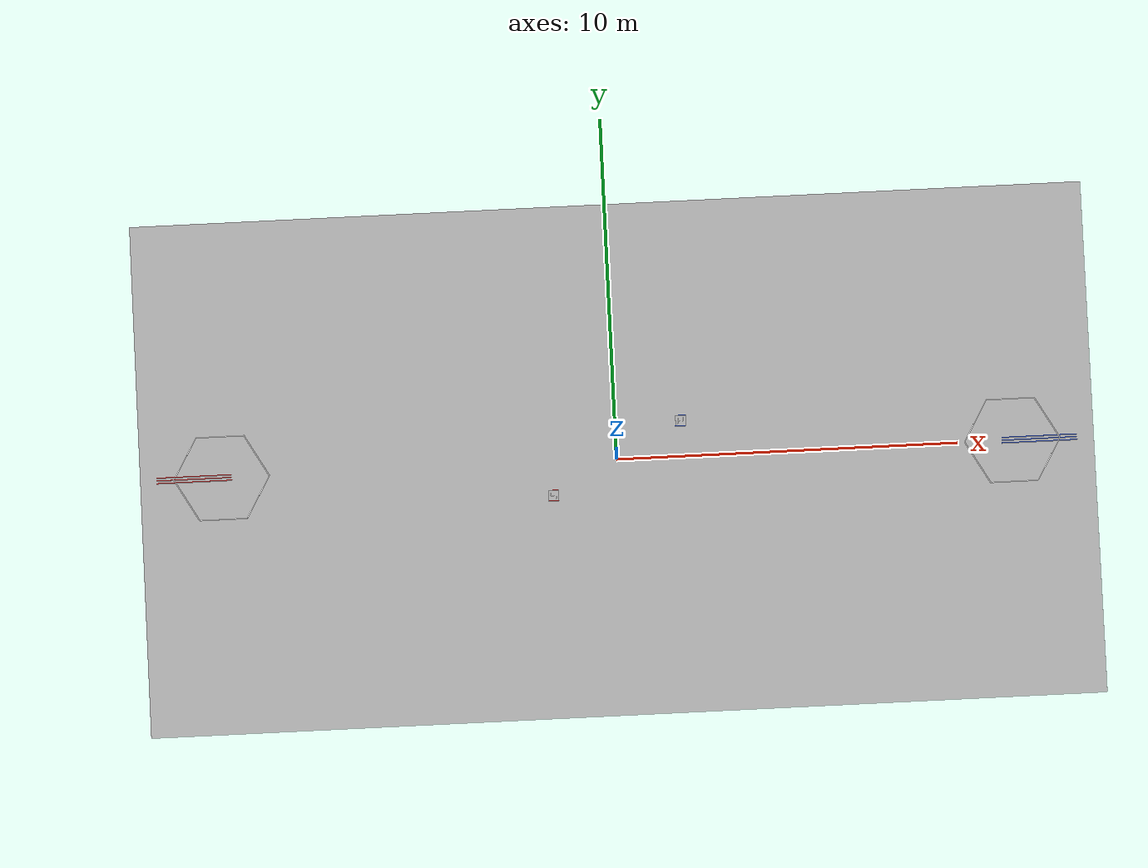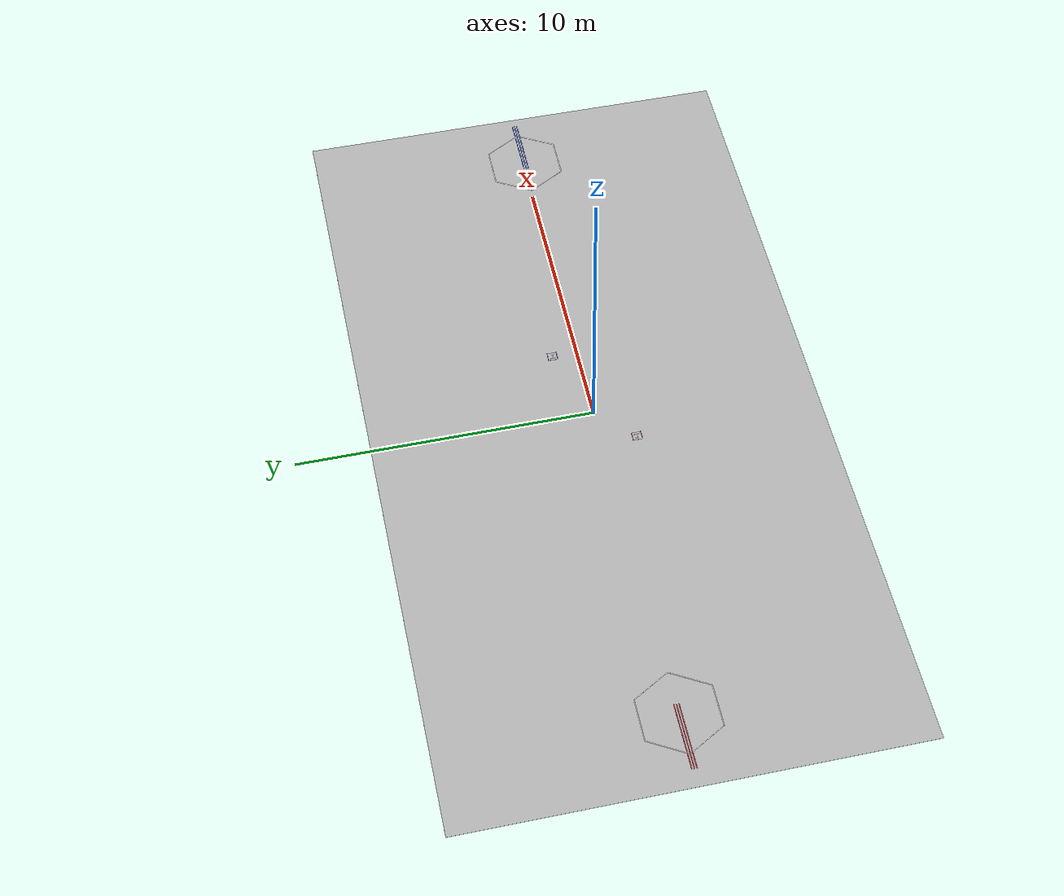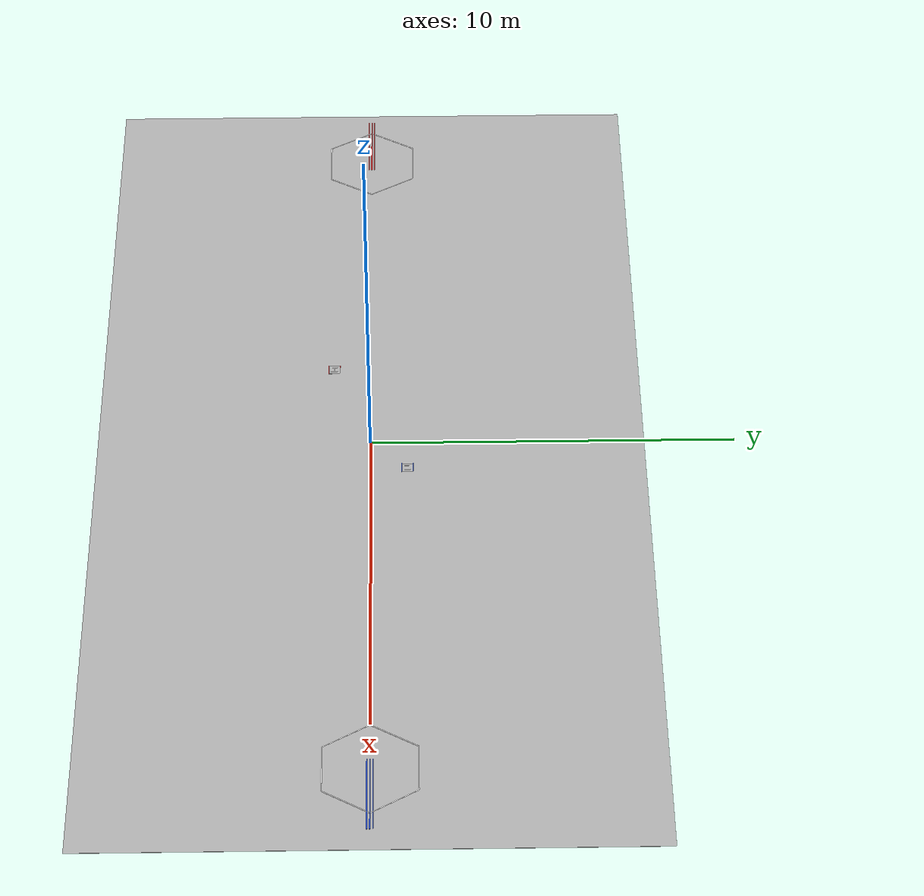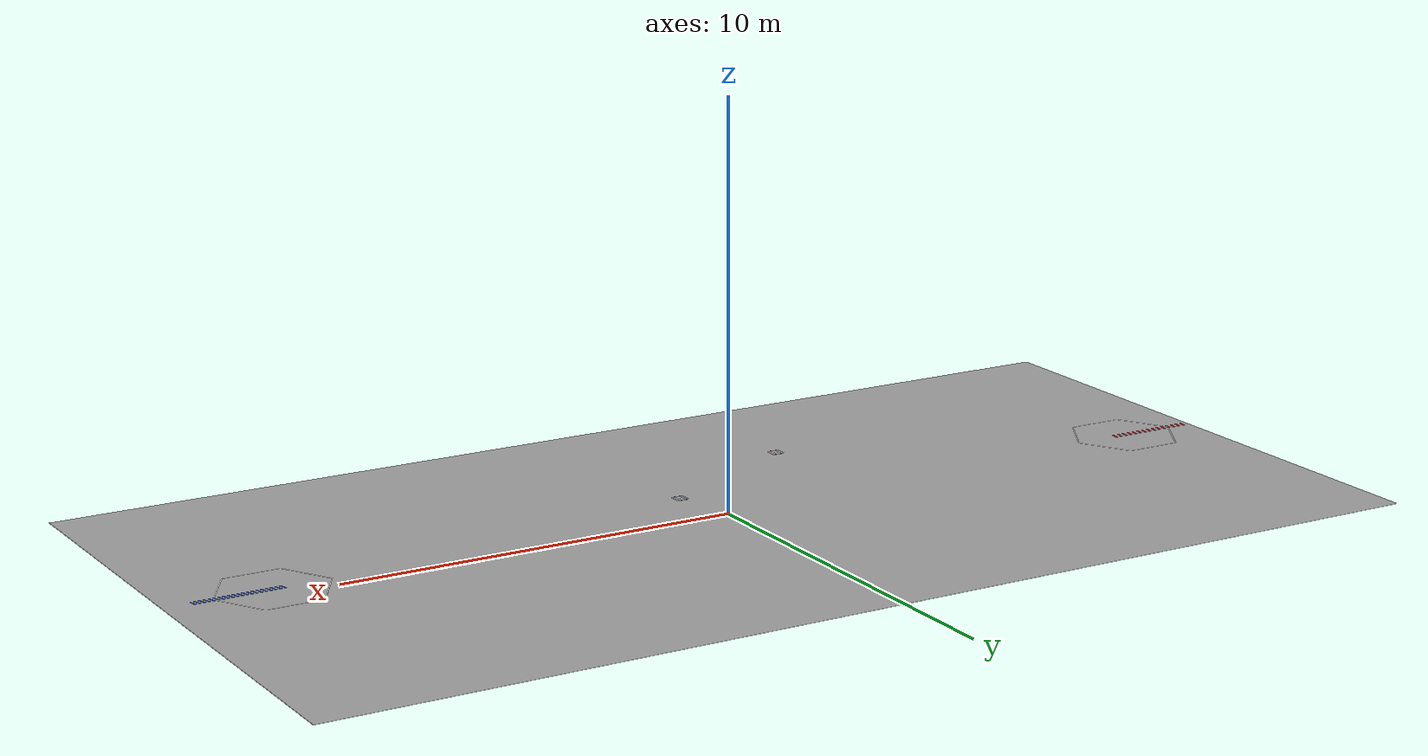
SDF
<sdf version="1.6">
 <world name="rmuc2027">
  <physics name="default" type="ode">
   <max_step_size>0.002</max_step_size>
   <real_time_factor>1.0</real_time_factor>
   <real_time_update_rate>500</real_time_update_rate>
   <ode><solver><type>quick</type><iters>50</iters></solver></ode>
  </physics>
  <gravity>0 0 -9.81</gravity>
  <scene>
   <ambient>0.35 0.35 0.35 1</ambient>
   <background>0.15 0.15 0.18 1</background>
   <shadows>false</shadows>
   <grid>false</grid>
  </scene>
  <light name="sun" type="directional">
   <pose>0 0 20 0 0 0</pose>
   <diffuse>0.35 0.35 0.35 1</diffuse>
   <specular>0.02 0.02 0.02 1</specular>
   <direction>-0.3 0.2 -1.0</direction>
   <cast_shadows>false</cast_shadows>
  </light>
  <light name="lamp_0" type="point">
   <pose>-9 -4 6 0 0 0</pose>
   <diffuse>0.25 0.25 0.25 1</diffuse>
   <specular>0.02 0.02 0.02 1</specular>
   <attenuation>
    <range>25</range>
    <constant>0.6</constant>
    <linear>0.02</linear>
    <quadratic>0.0</quadratic>
   </attenuation>
   <cast_shadows>false</cast_shadows>
  </light>
  <light name="lamp_1" type="point">
   <pose>-9 4 6 0 0 0</pose>
   <diffuse>0.25 0.25 0.25 1</diffuse>
   <specular>0.02 0.02 0.02 1</specular>
   <attenuation>
    <range>25</range>
    <constant>0.6</constant>
    <linear>0.02</linear>
    <quadratic>0.0</quadratic>
   </attenuation>
   <cast_shadows>false</cast_shadows>
  </light>
  <light name="lamp_2" type="point">
   <pose>0 0 6 0 0 0</pose>
   <diffuse>0.25 0.25 0.25 1</diffuse>
   <specular>0.02 0.02 0.02 1</specular>
   <attenuation>
    <range>25</range>
    <constant>0.6</constant>
    <linear>0.02</linear>
    <quadratic>0.0</quadratic>
   </attenuation>
   <cast_shadows>false</cast_shadows>
  </light>
  <light name="lamp_3" type="point">
   <pose>9 -4 6 0 0 0</pose>
   <diffuse>0.25 0.25 0.25 1</diffuse>
   <specular>0.02 0.02 0.02 1</specular>
   <attenuation>
    <range>25</range>
    <constant>0.6</constant>
    <linear>0.02</linear>
    <quadratic>0.0</quadratic>
   </attenuation>
   <cast_shadows>false</cast_shadows>
  </light>
  <light name="lamp_4" type="point">
   <pose>9 4 6 0 0 0</pose>
   <diffuse>0.25 0.25 0.25 1</diffuse>
   <specular>0.02 0.02 0.02 1</specular>
   <attenuation>
    <range>25</range>
    <constant>0.6</constant>
    <linear>0.02</linear>
    <quadratic>0.0</quadratic>
   </attenuation>
   <cast_shadows>false</cast_shadows>
  </light>
  <model name="field_floor">
   <static>true</static>
   <pose>0 0 -0.05 0 0 0</pose>
   <link name="link">
    <collision name="collision">
     <geometry><box><size>30.0000 17.0000 0.1000</size></box></geometry>
     <surface><friction><ode><mu>0.8</mu><mu2>0.8</mu2></ode></friction></surface>
    </collision>
    <visual name="texture">
     <pose>0 0 0.08 0 0 0</pose>
     <geometry><box><size>28.0000 15.0000 0.0100</size></box></geometry>
     <material>
      <script>
       <uri>model://rm_field/materials/scripts</uri>
       <uri>model://rm_field/materials/textures</uri>
       <name>RM/Floor</name>
      </script>
     </material>
    </visual>
   </link>
  </model>
  <model name="wall_xp">
   <static>true</static>
   <pose>14.0500 0.0000 1.2000 0.0000 0.0000 0.0000</pose>
   <link name="link">
    <collision name="collision"><geometry><box><size>0.1000 15.2000 2.4000</size></box></geometry></collision>
   </link>
  </model>
  <model name="wall_xn">
   <static>true</static>
   <pose>-14.0500 0.0000 1.2000 0.0000 0.0000 0.0000</pose>
   <link name="link">
    <collision name="collision"><geometry><box><size>0.1000 15.2000 2.4000</size></box></geometry></collision>
   </link>
  </model>
  <model name="wall_yp">
   <static>true</static>
   <pose>0.0000 7.5500 1.2000 0.0000 0.0000 0.0000</pose>
   <link name="link">
    <collision name="collision"><geometry><box><size>28.0000 0.1000 2.4000</size></box></geometry></collision>
   </link>
  </model>
  <model name="wall_yn">
   <static>true</static>
   <pose>0.0000 -7.5500 1.2000 0.0000 0.0000 0.0000</pose>
   <link name="link">
    <collision name="collision"><geometry><box><size>28.0000 0.1000 2.4000</size></box></geometry></collision>
   </link>
  </model>
  <model name="red_fortress">
   <static>true</static>
   <pose>-9.0000 -3.5000 0.2000 0.0000 0.0000 0.0000</pose>
   <link name="link">
    <collision name="collision"><geometry><box><size>2.0000 1.6000 0.4000</size></box></geometry></collision>
   </link>
  </model>
  <model name="blue_fortress">
   <static>true</static>
   <pose>9.0000 3.5000 0.2000 0.0000 0.0000 0.0000</pose>
   <link name="link">
    <collision name="collision"><geometry><box><size>2.0000 1.6000 0.4000</size></box></geometry></collision>
   </link>
  </model>
  <model name="red_trapezoid_highland">
   <static>true</static>
   <pose>-8.3000 4.6000 0.1000 0.0000 0.0000 0.0000</pose>
   <link name="link">
    <collision name="collision"><geometry><box><size>3.0000 3.0000 0.2000</size></box></geometry></collision>
   </link>
  </model>
  <model name="blue_trapezoid_highland">
   <static>true</static>
   <pose>8.3000 -4.6000 0.1000 0.0000 0.0000 0.0000</pose>
   <link name="link">
    <collision name="collision"><geometry><box><size>3.0000 3.0000 0.2000</size></box></geometry></collision>
   </link>
  </model>
  <model name="red_high_point">
   <static>true</static>
   <pose>-11.6000 5.6000 0.3000 0.0000 0.0000 0.0000</pose>
   <link name="link">
    <collision name="collision"><geometry><box><size>2.2000 1.8000 0.6000</size></box></geometry></collision>
   </link>
  </model>
  <model name="blue_high_point">
   <static>true</static>
   <pose>11.6000 -5.6000 0.3000 0.0000 0.0000 0.0000</pose>
   <link name="link">
    <collision name="collision"><geometry><box><size>2.2000 1.8000 0.6000</size></box></geometry></collision>
   </link>
  </model>
  <model name="red_supply_wall">
   <static>true</static>
   <pose>-12.6000 -5.2000 0.6000 0.0000 0.0000 0.0000</pose>
   <link name="link">
    <collision name="collision"><geometry><box><size>2.2000 0.2000 1.2000</size></box></geometry></collision>
   </link>
  </model>
  <model name="blue_supply_wall">
   <static>true</static>
   <pose>12.6000 5.2000 0.6000 0.0000 0.0000 0.0000</pose>
   <link name="link">
    <collision name="collision"><geometry><box><size>2.2000 0.2000 1.2000</size></box></geometry></collision>
   </link>
  </model>
  <model name="red_workbench">
   <static>true</static>
   <pose>-13.2000 -6.4000 0.4000 0.0000 0.0000 0.0000</pose>
   <link name="link">
    <collision name="collision"><geometry><box><size>0.8000 0.6000 0.8000</size></box></geometry></collision>
   </link>
  </model>
  <model name="blue_workbench">
   <static>true</static>
   <pose>13.2000 6.4000 0.4000 0.0000 0.0000 0.0000</pose>
   <link name="link">
    <collision name="collision"><geometry><box><size>0.8000 0.6000 0.8000</size></box></geometry></collision>
   </link>
  </model>
  <model name="red_dart_station">
   <static>true</static>
   <pose>-13.4000 3.3000 0.6000 0.0000 0.0000 0.0000</pose>
   <link name="link">
    <collision name="collision"><geometry><box><size>1.0000 1.2000 1.2000</size></box></geometry></collision>
   </link>
  </model>
  <model name="blue_dart_station">
   <static>true</static>
   <pose>13.4000 -3.3000 0.6000 0.0000 0.0000 0.0000</pose>
   <link name="link">
    <collision name="collision"><geometry><box><size>1.0000 1.2000 1.2000</size></box></geometry></collision>
   </link>
  </model>
  <model name="red_road_tunnel">
   <static>true</static>
   <pose>-5.5000 -5.8000 0.2750 0.0000 0.0000 0.0000</pose>
   <link name="link">
    <collision name="collision"><geometry><box><size>3.2000 1.4000 0.5500</size></box></geometry></collision>
   </link>
  </model>
  <model name="blue_road_tunnel">
   <static>true</static>
   <pose>5.5000 5.8000 0.2750 0.0000 0.0000 0.0000</pose>
   <link name="link">
    <collision name="collision"><geometry><box><size>3.2000 1.4000 0.5500</size></box></geometry></collision>
   </link>
  </model>
  <model name="red_road_bump_zone">
   <static>true</static>
   <pose>-3.0000 6.3000 0.0250 0.0000 0.0000 0.0000</pose>
   <link name="link">
    <collision name="collision"><geometry><box><size>2.5000 1.6000 0.0500</size></box></geometry></collision>
   </link>
  </model>
  <model name="blue_road_bump_zone">
   <static>true</static>
   <pose>3.0000 -6.3000 0.0250 0.0000 0.0000 0.0000</pose>
   <link name="link">
    <collision name="collision"><geometry><box><size>2.5000 1.6000 0.0500</size></box></geometry></collision>
   </link>
  </model>
  <model name="red_outpost_pedestal">
   <static>true</static>
   <pose>-3.1000 -3.8400 0.1000 0.0000 0.0000 0.0000</pose>
   <link name="link">
    <collision name="collision"><geometry><box><size>0.9000 0.9000 0.2000</size></box></geometry></collision>
   </link>
  </model>
  <model name="blue_outpost_pedestal">
   <static>true</static>
   <pose>3.1000 3.8400 0.1000 0.0000 0.0000 0.0000</pose>
   <link name="link">
    <collision name="collision"><geometry><box><size>0.9000 0.9000 0.2000</size></box></geometry></collision>
   </link>
  </model>
  <model name="red_base_pedestal">
   <static>true</static>
   <pose>-11.5000 0.0000 0.1000 0.0000 0.0000 0.0000</pose>
   <link name="link">
    <collision name="collision"><geometry><box><size>1.6000 1.6000 0.2000</size></box></geometry></collision>
   </link>
  </model>
  <model name="blue_base_pedestal">
   <static>true</static>
   <pose>11.5000 -0.0000 0.1000 0.0000 0.0000 0.0000</pose>
   <link name="link">
    <collision name="collision"><geometry><box><size>1.6000 1.6000 0.2000</size></box></geometry></collision>
   </link>
  </model>
  <model name="central_highland">
   <static>true</static>
   <pose>0.0000 0.0000 0.3000 0.0000 0.0000 0.0000</pose>
   <link name="link">
    <collision name="collision"><geometry><box><size>5.4000 3.2000 0.6000</size></box></geometry></collision>
   </link>
  </model>
  <model name="red_hangar_platform">
   <static>true</static>
   <pose>-1.9000 -1.0000 0.7250 0.0000 0.0000 0.0000</pose>
   <link name="link">
    <collision name="collision"><geometry><box><size>0.7000 0.5000 0.2500</size></box></geometry></collision>
   </link>
  </model>
  <model name="red_hangar">
   <static>true</static>
   <pose>-1.9000 -1.0000 0.9100 0.0000 0.0000 0.0000</pose>
   <link name="link">
    <collision name="collision"><geometry><box><size>0.3200 0.3200 0.1200</size></box></geometry></collision>
   </link>
  </model>
  <model name="blue_hangar_platform">
   <static>true</static>
   <pose>1.9000 1.0000 0.7250 0.0000 0.0000 0.0000</pose>
   <link name="link">
    <collision name="collision"><geometry><box><size>0.7000 0.5000 0.2500</size></box></geometry></collision>
   </link>
  </model>
  <model name="blue_hangar">
   <static>true</static>
   <pose>1.9000 1.0000 0.9100 0.0000 0.0000 0.0000</pose>
   <link name="link">
    <collision name="collision"><geometry><box><size>0.3200 0.3200 0.1200</size></box></geometry></collision>
   </link>
  </model>
  <model name="red_navigation_markings">
   <static>true</static>
   <link name="paint">
    <visual name="base_boundary_0">
     <pose>-10.5450 0.6102 0.2040 0.0000 0.0000 2.0944</pose>
     <geometry><box><size>1.4000 0.0250 0.0030</size></box></geometry>
     <material>
      <script>
       <uri>model://rm_field/materials/scripts</uri>
       <uri>model://rm_field/materials/textures</uri>
       <name>RM/WhitePaint</name>
      </script>
     </material>
    </visual>
    <visual name="base_boundary_1">
     <pose>-11.5950 1.2164 0.2040 0.0000 0.0000 3.1416</pose>
     <geometry><box><size>1.4000 0.0250 0.0030</size></box></geometry>
     <material>
      <script>
       <uri>model://rm_field/materials/scripts</uri>
       <uri>model://rm_field/materials/textures</uri>
       <name>RM/WhitePaint</name>
      </script>
     </material>
    </visual>
    <visual name="base_boundary_2">
     <pose>-12.6450 0.6102 0.2040 0.0000 0.0000 -2.0944</pose>
     <geometry><box><size>1.4000 0.0250 0.0030</size></box></geometry>
     <material>
      <script>
       <uri>model://rm_field/materials/scripts</uri>
       <uri>model://rm_field/materials/textures</uri>
       <name>RM/WhitePaint</name>
      </script>
     </material>
    </visual>
    <visual name="base_boundary_3">
     <pose>-12.6450 -0.6022 0.2040 0.0000 0.0000 -1.0472</pose>
     <geometry><box><size>1.4000 0.0250 0.0030</size></box></geometry>
     <material>
      <script>
       <uri>model://rm_field/materials/scripts</uri>
       <uri>model://rm_field/materials/textures</uri>
       <name>RM/WhitePaint</name>
      </script>
     </material>
    </visual>
    <visual name="base_boundary_4">
     <pose>-11.5950 -1.2084 0.2040 0.0000 0.0000 -0.0000</pose>
     <geometry><box><size>1.4000 0.0250 0.0030</size></box></geometry>
     <material>
      <script>
       <uri>model://rm_field/materials/scripts</uri>
       <uri>model://rm_field/materials/textures</uri>
       <name>RM/WhitePaint</name>
      </script>
     </material>
    </visual>
    <visual name="base_boundary_5">
     <pose>-10.5450 -0.6022 0.2040 0.0000 0.0000 1.0472</pose>
     <geometry><box><size>1.4000 0.0250 0.0030</size></box></geometry>
     <material>
      <script>
       <uri>model://rm_field/materials/scripts</uri>
       <uri>model://rm_field/materials/textures</uri>
       <name>RM/WhitePaint</name>
      </script>
     </material>
    </visual>
    <visual name="team_lane_-1">
     <pose>-12.3950 -0.0760 0.2040 0.0000 0.0000 0.0000</pose>
     <geometry><box><size>2.2000 0.0250 0.0030</size></box></geometry>
     <material>
      <script>
       <uri>model://rm_field/materials/scripts</uri>
       <uri>model://rm_field/materials/textures</uri>
       <name>RM/RedPaint</name>
      </script>
     </material>
    </visual>
    <visual name="team_lane_0">
     <pose>-12.3950 0.0040 0.2040 0.0000 0.0000 0.0000</pose>
     <geometry><box><size>2.2000 0.0250 0.0030</size></box></geometry>
     <material>
      <script>
       <uri>model://rm_field/materials/scripts</uri>
       <uri>model://rm_field/materials/textures</uri>
       <name>RM/RedPaint</name>
      </script>
     </material>
    </visual>
    <visual name="team_lane_1">
     <pose>-12.3950 0.0840 0.2040 0.0000 0.0000 0.0000</pose>
     <geometry><box><size>2.2000 0.0250 0.0030</size></box></geometry>
     <material>
      <script>
       <uri>model://rm_field/materials/scripts</uri>
       <uri>model://rm_field/materials/textures</uri>
       <name>RM/RedPaint</name>
      </script>
     </material>
    </visual>
    <visual name="hangar_top">
     <pose>-1.9000 -1.0000 0.9720 0.0000 0.0000 0.0000</pose>
     <geometry><box><size>0.3000 0.3000 0.0040</size></box></geometry>
     <material>
      <script>
       <uri>model://rm_field/materials/scripts</uri>
       <uri>model://rm_field/materials/textures</uri>
       <name>RM/ArmorBody</name>
      </script>
     </material>
    </visual>
    <visual name="h_left">
     <pose>-1.9750 -1.0000 0.9760 0.0000 0.0000 0.0000</pose>
     <geometry><box><size>0.0180 0.1800 0.0030</size></box></geometry>
     <material>
      <script>
       <uri>model://rm_field/materials/scripts</uri>
       <uri>model://rm_field/materials/textures</uri>
       <name>RM/WhitePaint</name>
      </script>
     </material>
    </visual>
    <visual name="h_right">
     <pose>-1.8250 -1.0000 0.9760 0.0000 0.0000 0.0000</pose>
     <geometry><box><size>0.0180 0.1800 0.0030</size></box></geometry>
     <material>
      <script>
       <uri>model://rm_field/materials/scripts</uri>
       <uri>model://rm_field/materials/textures</uri>
       <name>RM/WhitePaint</name>
      </script>
     </material>
    </visual>
    <visual name="h_cross">
     <pose>-1.9000 -1.0000 0.9760 0.0000 0.0000 0.0000</pose>
     <geometry><box><size>0.1500 0.0180 0.0030</size></box></geometry>
     <material>
      <script>
       <uri>model://rm_field/materials/scripts</uri>
       <uri>model://rm_field/materials/textures</uri>
       <name>RM/WhitePaint</name>
      </script>
     </material>
    </visual>
    <visual name="hangar_edge_-1">
     <pose>-1.9000 -1.1550 0.9760 0.0000 0.0000 0.0000</pose>
     <geometry><box><size>0.3200 0.0150 0.0030</size></box></geometry>
     <material>
      <script>
       <uri>model://rm_field/materials/scripts</uri>
       <uri>model://rm_field/materials/textures</uri>
       <name>RM/RedPaint</name>
      </script>
     </material>
    </visual>
    <visual name="hangar_edge_1">
     <pose>-1.9000 -0.8450 0.9760 0.0000 0.0000 0.0000</pose>
     <geometry><box><size>0.3200 0.0150 0.0030</size></box></geometry>
     <material>
      <script>
       <uri>model://rm_field/materials/scripts</uri>
       <uri>model://rm_field/materials/textures</uri>
       <name>RM/RedPaint</name>
      </script>
     </material>
    </visual>
   </link>
  </model>
  <model name="blue_navigation_markings">
   <static>true</static>
   <link name="paint">
    <visual name="base_boundary_0">
     <pose>12.6450 0.6022 0.2040 0.0000 0.0000 2.0944</pose>
     <geometry><box><size>1.4000 0.0250 0.0030</size></box></geometry>
     <material>
      <script>
       <uri>model://rm_field/materials/scripts</uri>
       <uri>model://rm_field/materials/textures</uri>
       <name>RM/WhitePaint</name>
      </script>
     </material>
    </visual>
    <visual name="base_boundary_1">
     <pose>11.5950 1.2084 0.2040 0.0000 0.0000 3.1416</pose>
     <geometry><box><size>1.4000 0.0250 0.0030</size></box></geometry>
     <material>
      <script>
       <uri>model://rm_field/materials/scripts</uri>
       <uri>model://rm_field/materials/textures</uri>
       <name>RM/WhitePaint</name>
      </script>
     </material>
    </visual>
    <visual name="base_boundary_2">
     <pose>10.5450 0.6022 0.2040 0.0000 0.0000 -2.0944</pose>
     <geometry><box><size>1.4000 0.0250 0.0030</size></box></geometry>
     <material>
      <script>
       <uri>model://rm_field/materials/scripts</uri>
       <uri>model://rm_field/materials/textures</uri>
       <name>RM/WhitePaint</name>
      </script>
     </material>
    </visual>
    <visual name="base_boundary_3">
     <pose>10.5450 -0.6102 0.2040 0.0000 0.0000 -1.0472</pose>
     <geometry><box><size>1.4000 0.0250 0.0030</size></box></geometry>
     <material>
      <script>
       <uri>model://rm_field/materials/scripts</uri>
       <uri>model://rm_field/materials/textures</uri>
       <name>RM/WhitePaint</name>
      </script>
     </material>
    </visual>
    <visual name="base_boundary_4">
     <pose>11.5950 -1.2164 0.2040 0.0000 0.0000 -0.0000</pose>
     <geometry><box><size>1.4000 0.0250 0.0030</size></box></geometry>
     <material>
      <script>
       <uri>model://rm_field/materials/scripts</uri>
       <uri>model://rm_field/materials/textures</uri>
       <name>RM/WhitePaint</name>
      </script>
     </material>
    </visual>
    <visual name="base_boundary_5">
     <pose>12.6450 -0.6102 0.2040 0.0000 0.0000 1.0472</pose>
     <geometry><box><size>1.4000 0.0250 0.0030</size></box></geometry>
     <material>
      <script>
       <uri>model://rm_field/materials/scripts</uri>
       <uri>model://rm_field/materials/textures</uri>
       <name>RM/WhitePaint</name>
      </script>
     </material>
    </visual>
    <visual name="team_lane_-1">
     <pose>12.3950 -0.0840 0.2040 0.0000 0.0000 0.0000</pose>
     <geometry><box><size>2.2000 0.0250 0.0030</size></box></geometry>
     <material>
      <script>
       <uri>model://rm_field/materials/scripts</uri>
       <uri>model://rm_field/materials/textures</uri>
       <name>RM/BluePaint</name>
      </script>
     </material>
    </visual>
    <visual name="team_lane_0">
     <pose>12.3950 -0.0040 0.2040 0.0000 0.0000 0.0000</pose>
     <geometry><box><size>2.2000 0.0250 0.0030</size></box></geometry>
     <material>
      <script>
       <uri>model://rm_field/materials/scripts</uri>
       <uri>model://rm_field/materials/textures</uri>
       <name>RM/BluePaint</name>
      </script>
     </material>
    </visual>
    <visual name="team_lane_1">
     <pose>12.3950 0.0760 0.2040 0.0000 0.0000 0.0000</pose>
     <geometry><box><size>2.2000 0.0250 0.0030</size></box></geometry>
     <material>
      <script>
       <uri>model://rm_field/materials/scripts</uri>
       <uri>model://rm_field/materials/textures</uri>
       <name>RM/BluePaint</name>
      </script>
     </material>
    </visual>
    <visual name="hangar_top">
     <pose>1.9000 1.0000 0.9720 0.0000 0.0000 0.0000</pose>
     <geometry><box><size>0.3000 0.3000 0.0040</size></box></geometry>
     <material>
      <script>
       <uri>model://rm_field/materials/scripts</uri>
       <uri>model://rm_field/materials/textures</uri>
       <name>RM/ArmorBody</name>
      </script>
     </material>
    </visual>
    <visual name="h_left">
     <pose>1.8250 1.0000 0.9760 0.0000 0.0000 0.0000</pose>
     <geometry><box><size>0.0180 0.1800 0.0030</size></box></geometry>
     <material>
      <script>
       <uri>model://rm_field/materials/scripts</uri>
       <uri>model://rm_field/materials/textures</uri>
       <name>RM/WhitePaint</name>
      </script>
     </material>
    </visual>
    <visual name="h_right">
     <pose>1.9750 1.0000 0.9760 0.0000 0.0000 0.0000</pose>
     <geometry><box><size>0.0180 0.1800 0.0030</size></box></geometry>
     <material>
      <script>
       <uri>model://rm_field/materials/scripts</uri>
       <uri>model://rm_field/materials/textures</uri>
       <name>RM/WhitePaint</name>
      </script>
     </material>
    </visual>
    <visual name="h_cross">
     <pose>1.9000 1.0000 0.9760 0.0000 0.0000 0.0000</pose>
     <geometry><box><size>0.1500 0.0180 0.0030</size></box></geometry>
     <material>
      <script>
       <uri>model://rm_field/materials/scripts</uri>
       <uri>model://rm_field/materials/textures</uri>
       <name>RM/WhitePaint</name>
      </script>
     </material>
    </visual>
    <visual name="hangar_edge_-1">
     <pose>1.9000 0.8450 0.9760 0.0000 0.0000 0.0000</pose>
     <geometry><box><size>0.3200 0.0150 0.0030</size></box></geometry>
     <material>
      <script>
       <uri>model://rm_field/materials/scripts</uri>
       <uri>model://rm_field/materials/textures</uri>
       <name>RM/BluePaint</name>
      </script>
     </material>
    </visual>
    <visual name="hangar_edge_1">
     <pose>1.9000 1.1550 0.9760 0.0000 0.0000 0.0000</pose>
     <geometry><box><size>0.3200 0.0150 0.0030</size></box></geometry>
     <material>
      <script>
       <uri>model://rm_field/materials/scripts</uri>
       <uri>model://rm_field/materials/textures</uri>
       <name>RM/BluePaint</name>
      </script>
     </material>
    </visual>
   </link>
  </model>
 </world>
</sdf>
